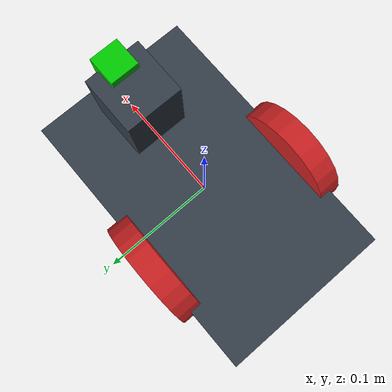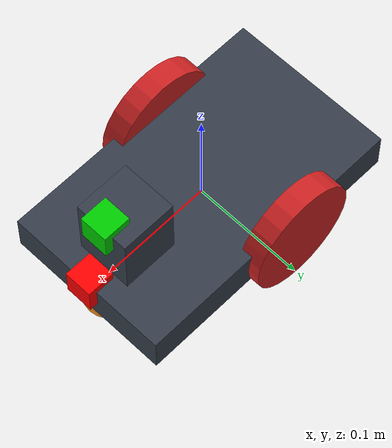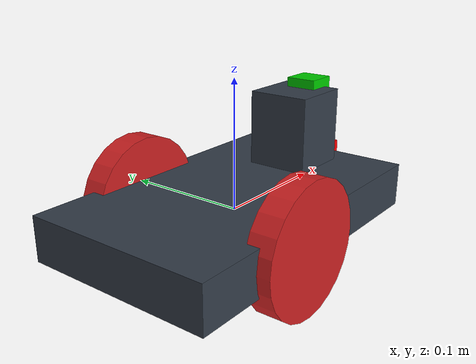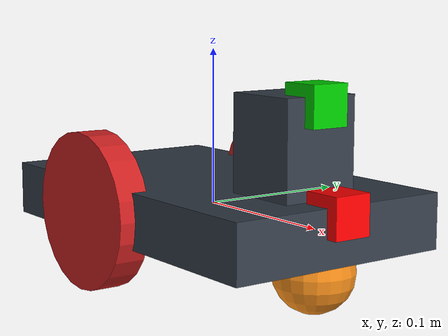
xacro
<?xml version="1.0"?>
<robot xmlns:xacro="http://www.ros.org/wiki/xacro" name="robot_laser_camera_xacro">
<xacro:include filename="$(find erl_third_assignment)/urdf/robot_laser_camera.gazebo"/>

  <!-- Macros -->
	<xacro:property name="length_wheel" value="0.02" />
	<xacro:property name="radius_wheel" value="0.05" />

	<xacro:macro name="default_inertial" params="mass">
    <inertial>
      <mass value="${mass}" />
      <origin rpy="0 1.5707 1.5707" xyz="0 0 0"/>
      <inertia ixx="0.000526666666667" ixy="0" ixz="0" iyy="0.000526666666667" iyz="0" izz="0.001"/>
    </inertial>
	</xacro:macro>

  <xacro:macro name="wheel_geometry">
		<geometry>
      <cylinder length="${length_wheel}" radius="${radius_wheel}"/>
    </geometry>
	</xacro:macro>

	<!-- Colors -->
  <material name="black">
    <color rgba="0.0 0.0 0.0 1.0"/>
  </material>
  <material name="blue">
    <color rgba="0.203125 0.23828125 0.28515625 1.0"/>
  </material>
  <material name="green">
    <color rgba="0.0 0.8 0.0 1.0"/>
  </material>
  <material name="grey">
    <color rgba="0.2 0.2 0.2 1.0"/>
  </material>
  <material name="orange">
    <color rgba="1.0 0.423529411765 0.0392156862745 1.0"/>
  </material>
  <material name="brown">
    <color rgba="0.870588235294 0.811764705882 0.764705882353 1.0"/>
  </material>
  <material name="red">
    <color rgba="0.80078125 0.12890625 0.1328125 1.0"/>
  </material>
  <material name="white">
    <color rgba="1.0 1.0 1.0 1.0"/>
  </material>

  <!-- Links -->
	<link name="link_chassis">
    <!-- pose and inertial -->
    <pose>0 0 0.1 0 0 0</pose>
    <inertial>
      <mass value="5"/>
      <origin rpy="0 0 0" xyz="0 0 0.1"/>
      <inertia ixx="0.0395416666667" ixy="0" ixz="0" iyy="0.106208333333" iyz="0" izz="0.106208333333"/>
    </inertial>
    <!-- body -->
    <collision name="collision_chassis">
      <geometry>
        <box size="0.25 0.15 0.035"/>
      </geometry>
    </collision>
    <visual>
      <origin rpy="0 0 0" xyz="0 0 0"/>
      <geometry>
        <box size="0.25 0.15 0.035"/>
      </geometry>
      <material name="blue"/>
    </visual>
    <!-- caster front -->
    <collision name="caster_front_collision">
      <origin rpy=" 0 0 0" xyz="0.175 0 -0.025"/>
      <geometry>
        <sphere radius="0.025"/>
      </geometry>
    </collision>
    <visual name="caster_front_visual">
      <origin rpy=" 0 0 0" xyz="0.1 0 -0.025"/>
      <geometry>
        <sphere radius="0.025"/>
      </geometry>
    </visual>
  </link>

  <link name="link_right_wheel">
    <xacro:default_inertial mass="0.2"/>
    <collision name="link_right_wheel_collision">
      <origin rpy="0 1.5707 1.5707" xyz="0 0 0"/>
      <xacro:wheel_geometry />
    </collision>
    <visual name="link_right_wheel_visual">
      <origin rpy="0 1.5707 1.5707" xyz="0 0 0"/>
      <xacro:wheel_geometry />
      <material name="red"/>
    </visual>
  </link>

  <link name="link_left_wheel">
    <xacro:default_inertial mass="0.2"/>
    <collision name="link_left_wheel_collision">
      <origin rpy="0 1.5707 1.5707" xyz="0 0 0"/>
      <xacro:wheel_geometry />
    </collision>
    <visual name="link_left_wheel_visual">
      <origin rpy="0 1.5707 1.5707" xyz="0 0 0"/>
      <xacro:wheel_geometry />
      <material name="red"/>
    </visual>
  </link>

  <link name="hokuyo_link">
	  <collision>
	    <origin xyz="0 0 0" rpy="0 0 0"/>
	    <geometry>
		    <box size="0.025 0.025 0.025"/>
	    </geometry>
	  </collision>
	  <visual>
	    <origin xyz="0 0 0" rpy="0 0 0"/>
	    <geometry>
		    <box size="0.025 0.025 0.025"/>
	    </geometry>
	    <material name="orange">
		    <color rgba="1 0 0 1"/>
	    </material>
	  </visual>
	  <inertial>
	    <mass value="1e-5" />
	    <origin xyz="0 0 0" rpy="0 0 0"/>
	    <inertia ixx="1e-6" ixy="0" ixz="0" iyy="1e-6" iyz="0" izz="1e-6" />
	  </inertial>
  </link>

  <link name="camera_support_link">
	  <collision>
	    <origin xyz="0 0 0.03" rpy="0 0 0"/>
	    <geometry>
		    <box size="0.05 0.05 0.06"/>
	    </geometry>
	  </collision>
	  <visual>
	    <origin xyz="0 0 0.03" rpy="0 0 0"/>
	    <geometry>
		    <box size="0.05 0.05 0.06"/>
	    </geometry>
	    <material name="blue"/>
	  </visual>
	  <inertial>
	    <mass value="0.025"/>
  		<origin xyz="0 0 0" rpy="0 0 0" />
  		<inertia ixx="1.2708333e-5" ixy="0" ixz="0" iyy="1.0416667e-5" iyz="0" izz="1.2708333e-5"/>
	  </inertial>
  </link>

  <link name="camera_link">
	    <collision>
	      <origin xyz="0 0 0" rpy="0 0 0"/>
	      <geometry>
		      <box size="0.025 0.025 0.025"/>
	      </geometry>
	    </collision>
	    <visual>
	      <origin xyz="0 0 0" rpy="0 0 0"/>
	      <geometry>
		      <box size="0.025 0.025 0.025"/>
	      </geometry>
	      <material name="green"/>
	    </visual>
	    <inertial>
	      <mass value="1e-5" />
	      <origin xyz="0 0 0" rpy="0 0 0"/>
	      <inertia ixx="1e-6" ixy="0" ixz="0" iyy="1e-6" iyz="0" izz="1e-6" />
	    </inertial>
  </link>

  <!-- Joints -->
  <joint name="joint_right_wheel" type="continuous">
    <origin rpy="0 0 0" xyz="-0.025 0.075 0"/>
    <child link="link_right_wheel"/>
    <parent link="link_chassis"/>
    <axis rpy="0 0 0" xyz="0 1 0"/>
    <limit effort="10000" velocity="1000"/>
    <joint_properties damping="1.0" friction="1.0"/>
  </joint>

  <joint name="joint_left_wheel" type="continuous">
    <origin rpy="0 0 0" xyz="-0.025 -0.075 0"/>
    <child link="link_left_wheel"/>
    <parent link="link_chassis"/>
    <axis rpy="0 0 0" xyz="0 1 0"/>
    <limit effort="10000" velocity="1000"/>
    <joint_properties damping="1.0" friction="1.0"/>
  </joint>

  <joint name="hokuyo_joint" type="fixed">
	  <origin xyz="0.12 0 0.0125" rpy="0 0 0"/>
	  <parent link="link_chassis"/>
	  <child link="hokuyo_link"/>
	</joint>

  <joint name="camera_support_joint" type="fixed">
	  <origin xyz="0.08 0 0.0175" rpy="0 0 0"/>
	  <parent link="link_chassis"/>
	  <child link="camera_support_link"/>
	</joint>

  <joint name="camera_joint" type="fixed">
	  <origin xyz="0.02 0 0.055" rpy="0 0 0"/>
	  <parent link="camera_support_link"/>
	  <child link="camera_link"/>
	</joint>

</robot>
